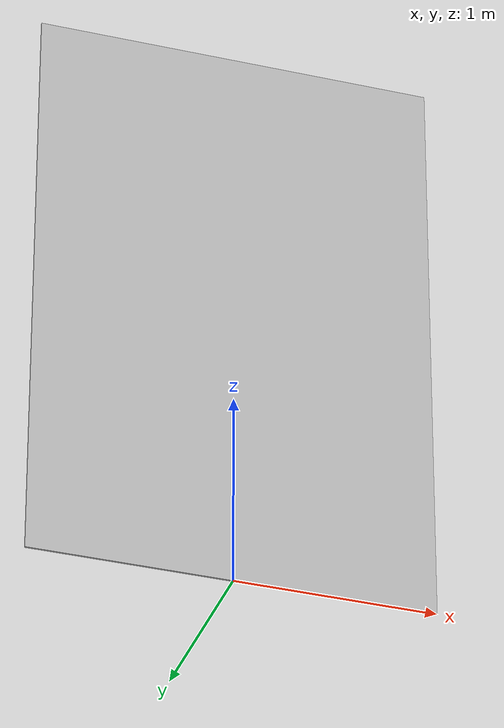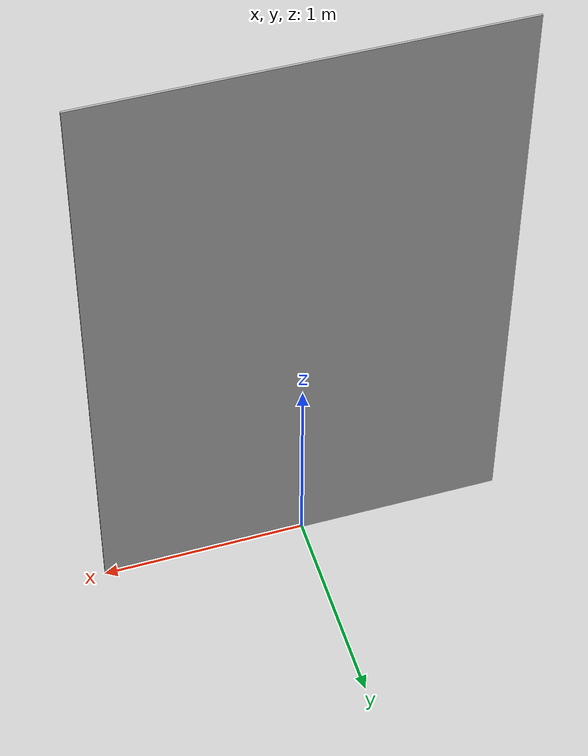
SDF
<?xml version="1.0" ?>
<sdf version="1.5">
  <model name="wall10">
    <static>true</static>
    <link name="chassis">
      <pose>0 0 1.5 0 0 0</pose>
      <collision name="collision">
        <geometry>
          <box>
            <size>2.0 0.01 3.0</size>
          </box>
        </geometry>
      </collision>
      <visual name="visual">
        <geometry>
          <mesh>
            <uri>model://wall10/meshes/simple_box.dae</uri>
            <scale>2.0 0.01 3.0</scale>
          </mesh>
        </geometry>
        <material>
          <script>
            <uri>model://wall10/materials/scripts</uri>
            <uri>model://wall10/materials/textures</uri>
            <name>wall10/Diffuse</name>
          </script>
        </material>
      </visual>
    </link>
  </model>
</sdf>
